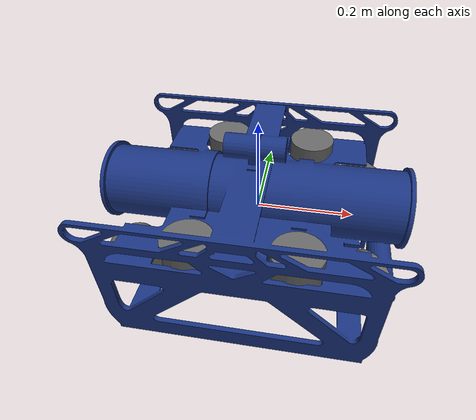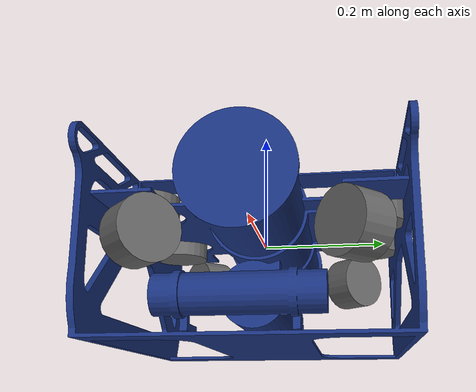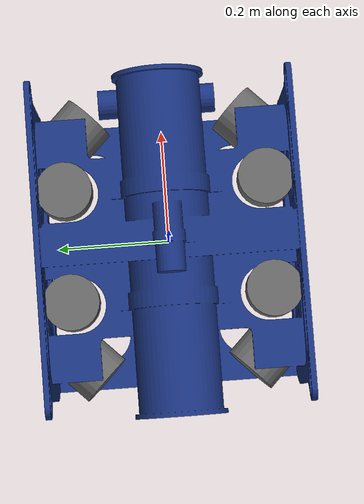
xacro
<?xml version="1.0"?>
<robot name="nova" xmlns:xacro="http://www.ros.org/wiki/xacro">

  <xacro:include filename="$(find nova_description)/urdf/nova.gazebo.xacro"/>

  <link name="base_link">
    <visual>
      <origin xyz="-0.005 0.235 -0.058" rpy="1.5708 0 0"/>
      <geometry>
        <mesh filename="package://nova_description/meshes/nova26.stl" scale="1 1 1"/>
      </geometry>
      <material name="dark_blue">
        <color rgba="0.1 0.2 0.5 1.0"/>
      </material>
    </visual>
    <collision>
      <origin xyz="-0.005 0.235 -0.058" rpy="1.5708 0 0"/>
      <geometry>
        <mesh filename="package://nova_description/meshes/nova26.stl" scale="1 1 1"/>
      </geometry>
    </collision>
    <inertial>
      <!-- 15kg, kutu yaklaşımı: 0.625×0.5×0.35m -->
      <mass value="15.0"/>
      <origin xyz="0 0 0" rpy="0 0 0"/>
      <inertia ixx="0.466" ixy="0.0" ixz="0.0"
               iyy="0.801" iyz="0.0"
               izz="0.641"/>
    </inertial>
  </link>

  <!-- ==================== THRUSTER MACRO ==================== -->
  <!-- T200 thruster: cylinder visual, thrust axis = link X     -->
  <xacro:macro name="thruster" params="name x y z roll pitch yaw">
    <link name="thruster_link_${name}">
      <visual>
        <origin xyz="0 0 0" rpy="0 1.5708 0"/>
        <geometry>
          <cylinder radius="0.05" length="0.057"/>
        </geometry>
        <material name="thruster_gray">
          <color rgba="0.4 0.4 0.4 1.0"/>
        </material>
      </visual>
    </link>
    <joint name="thruster_joint_${name}" type="fixed">
      <parent link="base_link"/>
      <child link="thruster_link_${name}"/>
      <origin xyz="${x} ${y} ${z}" rpy="${roll} ${pitch} ${yaw}"/>
    </joint>
  </xacro:macro>

  <!-- ==================== HORIZONTAL THRUSTERS (45°) ==================== -->
  <!-- Araç: X=ileri, Y=sol, Z=yukarı                                       -->
  <!-- Boyutlar: ~0.47m uzun, ~0.625m geniş, ~0.35m yüksek                  -->
  <xacro:thruster name="1" x=" 0.220" y="-0.150" z="-0.025" roll="0" pitch="0" yaw="-2.3562"/>
  <xacro:thruster name="2" x=" 0.220" y=" 0.150" z="-0.025" roll="0" pitch="0" yaw=" 2.3562"/>
  <xacro:thruster name="3" x="-0.220" y=" 0.150" z="-0.025" roll="0" pitch="0" yaw=" 0.7854"/>
  <xacro:thruster name="4" x="-0.220" y="-0.150" z="-0.025" roll="0" pitch="0" yaw="-0.7854"/>

  <!-- ==================== VERTICAL THRUSTERS ==================== -->
  <xacro:thruster name="5" x=" 0.100" y="-0.180" z="0.035" roll="0" pitch="1.5708" yaw="0"/>
  <xacro:thruster name="6" x=" 0.100" y=" 0.180" z="0.035" roll="0" pitch="1.5708" yaw="0"/>
  <xacro:thruster name="7" x="-0.100" y="-0.180" z="0.035" roll="0" pitch="1.5708" yaw="0"/>
  <xacro:thruster name="8" x="-0.100" y=" 0.180" z="0.035" roll="0" pitch="1.5708" yaw="0"/>

</robot>
